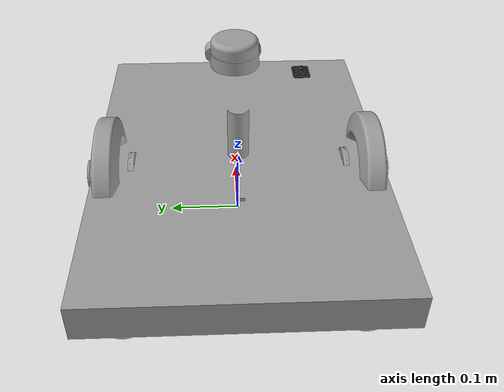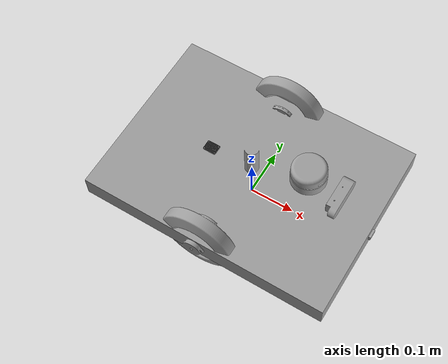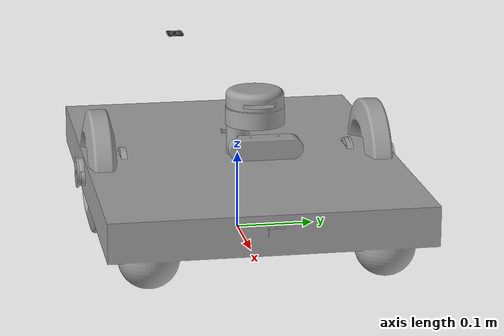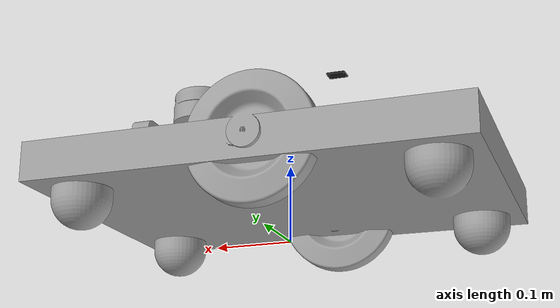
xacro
<?xml version="1.0" ?>
<robot name="cube" xmlns:xacro="http://www.ros.org/wiki/xacro">

<xacro:include filename="$(find cube_description)/urdf/materials.xacro" />
<xacro:include filename="$(find cube_description)/urdf/cube.trans" />
<xacro:include filename="$(find cube_description)/urdf/gazebo.xacro" />

<link name="base_footprint">
</link>

<joint name="fixed_base_joint" type="fixed">
  <parent link="base_footprint" />
  <child link="base_link" />
  <origin xyz="0 0 0" rpy="0 0 0"/>
  <axis xyz="0 0 0"/>
</joint>

<link name="base_link">
  <inertial>
    <origin xyz="-0.03436104134763452 0.004255153166517912 0.20134904683591295" rpy="0 0 0"/>
    <mass value="47.20765989840476"/>
    <inertia ixx="1.033748" iyy="1.280415" izz="1.201" ixy="0.031639" iyz="-0.040215" ixz="0.114859"/>
  </inertial>
  <visual>
    <origin xyz="0 0 0.0" rpy="0 0 0"/>
    <geometry>
      <mesh filename="package://cube_description/meshes/base_link.stl" scale="0.001 0.001 0.001"/>
    </geometry>
    <material name="opaque160160160"/>
  </visual>
  <collision>
    <origin xyz="0 0 0.006" rpy="0 0 0"/>
    <geometry>
      <box size="0.45 0.05 0.01" />
    </geometry>
  </collision>
</link>

<link name="imu_v1_1">
  <inertial>
    <origin xyz="0.01122185649964677 0.007537279025856644 0.0010632487781882527" rpy="0 0 0"/>
    <mass value="0.007717572133230737"/>
    <inertia ixx="0.0" iyy="0.0" izz="1e-06" ixy="0.0" iyz="0.0" ixz="-0.0"/>
  </inertial>
  <visual>
    <origin xyz="0.052922 0.082837 -0.2515" rpy="0 0 0"/>
    <geometry>
      <mesh filename="package://cube_description/meshes/imu_v1_1.stl" scale="0.001 0.001 0.001"/>
    </geometry>
    <material name="opaque262626"/>
  </visual>
  <collision>
    <origin xyz="0.052922 0.082837 -0.2515" rpy="0 0 0"/>
    <geometry>
      <mesh filename="package://cube_description/meshes/imu_v1_1.stl" scale="0.001 0.001 0.001"/>
    </geometry>
  </collision>
</link>

<link name="lidar_v1_1">
  <inertial>
    <origin xyz="-0.0006310310009192133 -1.036682722385878e-06 -0.0005403106637103805" rpy="0 0 0"/>
    <mass value="1.347912159118483"/>
    <inertia ixx="0.000658" iyy="0.000639" izz="0.000873" ixy="0.0" iyz="0.0" ixz="7e-06"/>
  </inertial>
  <visual>
    <origin xyz="-0.128043 1.5e-05 -0.1955" rpy="0 0 0"/>
    <geometry>
      <mesh filename="package://cube_description/meshes/lidar_v1_1.stl" scale="0.001 0.001 0.001"/>
    </geometry>
    <material name="steel_satin"/>
  </visual>
  <collision>
    <origin xyz="-0.128043 1.5e-05 -0.1955" rpy="0 0 0"/>
    <geometry>
      <mesh filename="package://cube_description/meshes/lidar_v1_1.stl" scale="0.001 0.001 0.001"/>
    </geometry>
  </collision>
</link>

<link name="depth_camera_v1_1">
  <inertial>
    <origin xyz="0.012822415314312635 0.02438009637633534 -1.0027264107370648e-05" rpy="0 0 0"/>
    <mass value="0.4030868295259092"/>
    <inertia ixx="0.000247" iyy="4.1e-05" izz="0.000247" ixy="6e-06" iyz="-0.0" ixz="-0.0"/>
  </inertial>
  <visual>
    <origin xyz="-0.184088 0.022403 -0.1615" rpy="0 0 0"/>
    <geometry>
      <mesh filename="package://cube_description/meshes/depth_camera_v1_1.stl" scale="0.001 0.001 0.001"/>
    </geometry>
    <material name="steel_satin"/>
  </visual>
  <collision>
    <origin xyz="-0.184088 0.022403 -0.1615" rpy="0 0 0"/>
    <geometry>
      <mesh filename="package://cube_description/meshes/depth_camera_v1_1.stl" scale="0.001 0.001 0.001"/>
    </geometry>
  </collision>
</link>

<link name="left_wheel_v1_1">
  <inertial>
    <origin xyz="-0.00011476068027998013 0.057486019860003096 1.811551186836624e-10" rpy="0 0 0"/>
    <mass value="4.364871932625406"/>
    <inertia ixx="0.007848" iyy="0.014009" izz="0.007848" ixy="-1.2e-05" iyz="-0.0" ixz="0.0"/>
  </inertial>
  <visual>
    <origin xyz="0.014189 -0.115701 -0.08" rpy="0 0 0"/>
    <geometry>
      <mesh filename="package://cube_description/meshes/left_wheel_v1_1.stl" scale="0.001 0.001 0.001"/>
    </geometry>
    <material name="steel_satin"/>
  </visual>
  <collision>
    <origin xyz="0.014189 -0.115701 -0.08" rpy="0 0 0"/>
    <geometry>
      <mesh filename="package://cube_description/meshes/left_wheel_v1_1.stl" scale="0.001 0.001 0.001"/>
    </geometry>
  </collision>
</link>

<link name="right_wheel_v1_1">
  <inertial>
    <origin xyz="0.00011493441134234963 -0.05748636841054998 -1.8113159583332816e-10" rpy="0 0 0"/>
    <mass value="4.364871932625406"/>
    <inertia ixx="0.007848" iyy="0.014009" izz="0.007848" ixy="-1.2e-05" iyz="-0.0" ixz="0.0"/>
  </inertial>
  <visual>
    <origin xyz="0.013725 0.116298 -0.08" rpy="0 0 0"/>
    <geometry>
      <mesh filename="package://cube_description/meshes/right_wheel_v1_1.stl" scale="0.001 0.001 0.001"/>
    </geometry>
    <material name="steel_satin"/>
  </visual>
  <collision>
    <origin xyz="0.013725 0.116298 -0.08" rpy="0 0 0"/>
    <geometry>
      <mesh filename="package://cube_description/meshes/right_wheel_v1_1.stl" scale="0.001 0.001 0.001"/>
    </geometry>
  </collision>
</link>

<joint name="Rigid 1" type="fixed">
  <origin xyz="-0.052922 -0.082837 0.2515" rpy="0 0 0"/>
  <parent link="base_link"/>
  <child link="imu_v1_1"/>
</joint>

<joint name="Rigid 2" type="fixed">
  <origin xyz="0.128043 -1.5e-05 0.1955" rpy="0 0 0"/>
  <parent link="base_link"/>
  <child link="lidar_v1_1"/>
</joint>

<joint name="Rigid 3" type="fixed">
  <origin xyz="0.184088 -0.022403 0.1615" rpy="0 0 0"/>
  <parent link="base_link"/>
  <child link="depth_camera_v1_1"/>
</joint>

<joint name="Revolute 4" type="continuous">
  <origin xyz="-0.014189 0.12 0.08" rpy="0 0 0"/>
  <parent link="base_link"/>
  <child link="left_wheel_v1_1"/>
  <axis xyz="-0.0 1.0 0.0"/>
</joint>

<joint name="Revolute 5" type="continuous">
  <origin xyz="-0.013725 -0.12 0.08" rpy="0 0 0"/>
  <parent link="base_link"/>
  <child link="right_wheel_v1_1"/>
  <axis xyz="0.0 1.0 -0.0"/>
</joint>

</robot>

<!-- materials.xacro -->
<robot name="cube" xmlns:xacro="http://www.ros.org/wiki/xacro" >

<material name="silver_default">
  <color rgba="0.700 0.700 0.700 1.000"/>
</material>
<material name="opaque160160160">
  <color rgba="0.6274509803921569 0.6274509803921569 0.6274509803921569 1.0"/>
</material>
<material name="steel_satin">
  <color rgba="0.6274509803921569 0.6274509803921569 0.6274509803921569 1.0"/>
</material>
<material name="opaque262626">
  <color rgba="0.10196078431372549 0.10196078431372549 0.10196078431372549 1.0"/>
</material>

</robot>

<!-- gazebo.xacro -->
<robot xmlns:xacro="http://www.ros.org/wiki/xacro">

  <xacro:property name="body_color" value="Gazebo/Silver" />
  <xacro:property name="lidar_color" value="Gazebo/Blue" />

  <gazebo reference="base_link">
    <material>${body_color}</material>
    <mu1>0.1</mu1>
    <mu2>0.1</mu2>
    <selfCollide>true</selfCollide>
    <gravity>true</gravity>
  </gazebo>

  <gazebo reference="imu_v1_1">
    <material>${body_color}</material>
    <mu1>0.2</mu1>
    <mu2>0.2</mu2>
    <selfCollide>true</selfCollide>
  </gazebo>

  <gazebo reference="lidar_v1_1">
    <material>${lidar_color}</material>
    <mu1>0.2</mu1>
    <mu2>0.2</mu2>
    <selfCollide>true</selfCollide>
  </gazebo>

  <gazebo reference="depth_camera_v1_1">
    <material>${body_color}</material>
    <mu1>0.2</mu1>
    <mu2>0.2</mu2>
    <selfCollide>true</selfCollide>
  </gazebo>

  <gazebo reference="left_wheel_v1_1">
    <material>${body_color}</material>
    <mu1>1000</mu1>
    <mu2>1000</mu2>
    <selfCollide>true</selfCollide>
  </gazebo>

  <gazebo reference="right_wheel_v1_1">
    <material>${body_color}</material>
    <mu1>1000</mu1>
    <mu2>1000</mu2>
    <selfCollide>true</selfCollide>
  </gazebo>

  <gazebo>
    <plugin name="diff_drive_control" filename="libgazebo_ros_diff_drive.so">

      <!-- Update rate in Hz -->
      <update_rate>50</update_rate>

      <!-- wheels -->
      <left_joint>Revolute 4</left_joint>
      <right_joint>Revolute 5</right_joint>

      <!-- kinematics -->
      <wheel_separation>0.344</wheel_separation>
      <wheel_diameter>0.16</wheel_diameter>

      <!-- input -->
      <command_topic>cmd_vel</command_topic>

      <!-- output -->
      <publish_odom>true</publish_odom>
      <publish_odom_tf>true</publish_odom_tf>
      <publish_wheel_tf>true</publish_wheel_tf>

      <odometry_topic>odom</odometry_topic>
      <odometry_frame>odom</odometry_frame>
      <robot_base_frame>base_footprint</robot_base_frame>

    </plugin>
  </gazebo>

  <gazebo reference="imu_v1_1">
    <gravity>true</gravity>
    <sensor name="imu_v1_1" type="imu">
      <always_on>true</always_on>
      <update_rate>30</update_rate>
      <visualize>true</visualize>
      <plugin name="my_imu_plugin" filename="libgazebo_ros_imu_sensor.so">
        <ros>
          <remapping>~/out:=imu</remapping>
        </ros>
        <frame_name>imu_v1_1</frame_name>
      </plugin>
    </sensor>
  </gazebo>

  <gazebo reference="lidar_v1_1">
    <sensor type="ray" name="head_hokuyo_sensor">
      <pose>0 0 0 0 0 0</pose>
      <visualize>false</visualize>
      <update_rate>30</update_rate>
      <ray>
        <scan>
          <horizontal>
            <samples>300</samples>
            <resolution>1</resolution>
            <min_angle>-3.14</min_angle>
            <max_angle>3.14</max_angle>
          </horizontal>
        </scan>
        <range>
          <min>0.10</min>
          <max>30.0</max>
          <resolution>0.01</resolution>
        </range>
        <noise>
          <type>gaussian</type>
          <mean>0.0</mean>
          <stddev>0.01</stddev>
        </noise>
      </ray>
      <plugin name="my_ray_sensor_plugin" filename="libgazebo_ros_ray_sensor.so">
        <ros>
          <!-- Configure namespace and remap to publish to /ray/pointcloud2 -->
          <remapping>~/out:=scan</remapping>
        </ros>
        <!-- Output as a PointCloud2, see above for other types -->
        <output_type>sensor_msgs/LaserScan</output_type>
        <!-- Clip intensity values so all are above 100, optional -->
        <min_intensity>100.0</min_intensity>
        <!-- Frame id for header of output, defaults to sensor's parent link name -->
        <frame_name>lidar_v1_1</frame_name>
      </plugin>
    </sensor>
  </gazebo>

  <gazebo reference="depth_camera_v1_1">
    <sensor name="camera" type="depth">
      <pose> 0 0 0 0 0 0</pose>
      <visualize>true</visualize>
      <update_rate>60.0</update_rate>
      <camera name="depth_camera_v1_1">
        <horizontal_fov>1.047198</horizontal_fov>
        <image>
          <width>640</width>
          <height>480</height>
          <format>R8G8B8</format>
        </image>
        <clip>
          <near>0.05</near>
          <far>10</far>
        </clip>
      </camera>
      <plugin name="depth_camera_controller" filename="libgazebo_ros_camera.so">
        <ros>
          <remapping>/camera/camera_info:=/camera/rgb/camera_info</remapping>
          <remapping>/camera/image_raw:=/camera/rgb/image_rect_color</remapping>
          <remapping>/camera/depth/image_raw:=/camera/depth_registered/image_raw</remapping>
        </ros>
        <baseline>0.2</baseline>
        <alwaysOn>true</alwaysOn>
        <updateRate>0.0</updateRate>
        <frame_name>depth_camera_v1_1</frame_name>
        <pointCloudCutoff>0.2</pointCloudCutoff>
        <pointCloudCutoffMax>10.0</pointCloudCutoffMax>
        <distortionK1>0</distortionK1>
        <distortionK2>0</distortionK2>
        <distortionK3>0</distortionK3>
        <distortionT1>0</distortionT1>
        <distortionT2>0</distortionT2>
        <CxPrime>0</CxPrime>
        <Cx>0</Cx>
        <Cy>0</Cy>
        <focalLength>0</focalLength>
        <hackBaseline>0</hackBaseline>
      </plugin>
    </sensor>
  </gazebo>

</robot>
